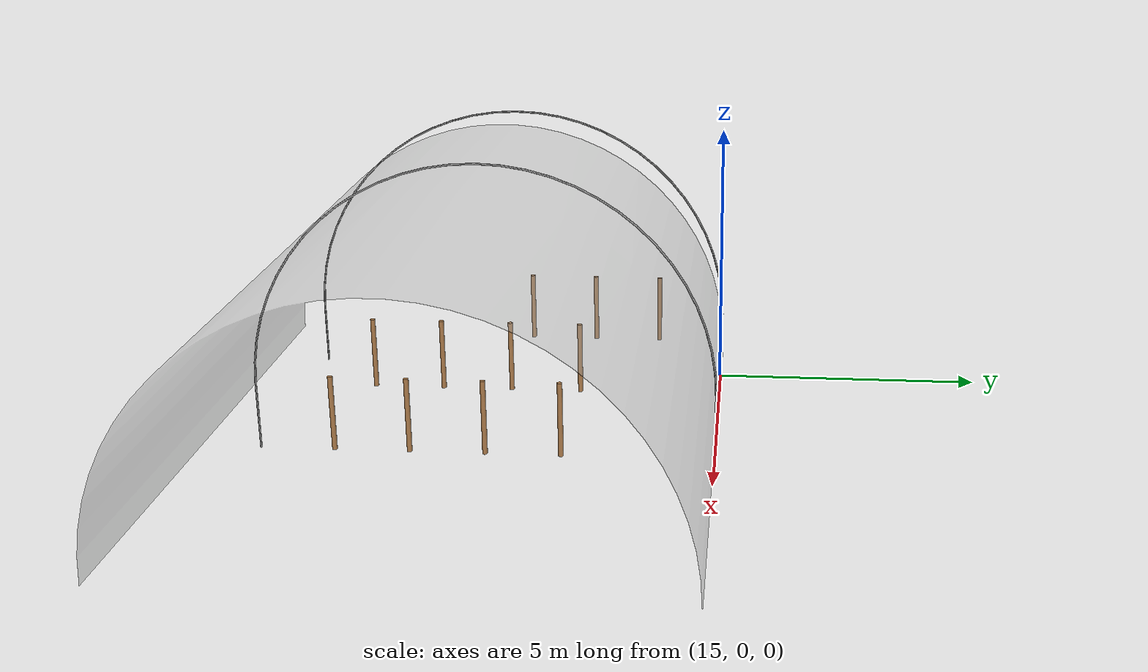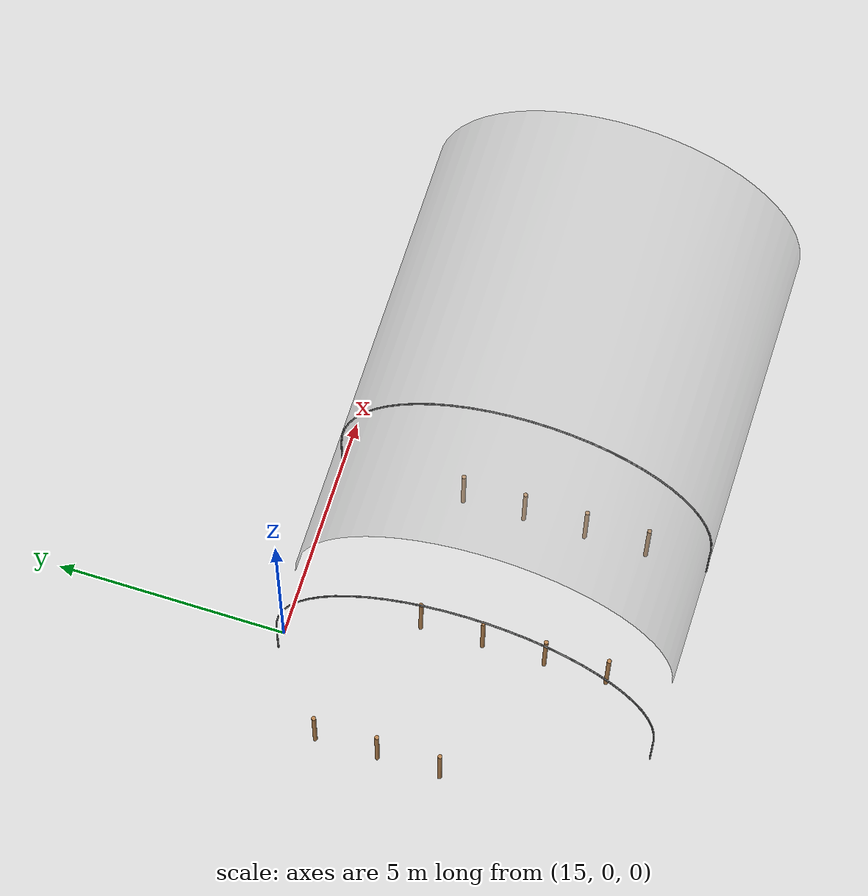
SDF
<sdf version="1.4">
 <world name="default">
  <model name="pole_12">
   <static>1</static>
   <pose>13.000 -4.050 0.691 0.0 0.0 0.0</pose>
   <link name="link">
    <collision name="collision">
     <geometry><cylinder><length>1.38235</length><radius>0.0456111</radius></cylinder></geometry>
    </collision>
    <visual name="visual">
     <geometry><cylinder><length>1.38235</length><radius>0.0456111</radius></cylinder></geometry>
     <material>
      <script><uri>file://media/materials/scripts/gazebo.material</uri><name>Gazebo/WoodFloor</name></script>
      <shader type="vertex"><normal_map>__default__</normal_map></shader>
      <emissive>0 0 0 1</emissive>
      <specular>0.01 0.01 0.01 1</specular>
      <ambient>0.9 0.9 0.9 1</ambient>
      <diffuse>0.09 0.09 0.09 1</diffuse>
     </material>
    </visual>
   </link>
  </model>
  <model name="pole_13">
   <static>1</static>
   <pose>13.000 -2.700 0.691 0.0 0.0 0.0</pose>
   <link name="link">
    <collision name="collision">
     <geometry><cylinder><length>1.38235</length><radius>0.0456111</radius></cylinder></geometry>
    </collision>
    <visual name="visual">
     <geometry><cylinder><length>1.38235</length><radius>0.0456111</radius></cylinder></geometry>
     <material>
      <script><uri>file://media/materials/scripts/gazebo.material</uri><name>Gazebo/WoodFloor</name></script>
      <shader type="vertex"><normal_map>__default__</normal_map></shader>
      <emissive>0 0 0 1</emissive>
      <specular>0.01 0.01 0.01 1</specular>
      <ambient>0.9 0.9 0.9 1</ambient>
      <diffuse>0.09 0.09 0.09 1</diffuse>
     </material>
    </visual>
   </link>
  </model>
  <model name="pole_14">
   <static>1</static>
   <pose>13.000 -1.350 0.691 0.0 0.0 0.0</pose>
   <link name="link">
    <collision name="collision">
     <geometry><cylinder><length>1.38235</length><radius>0.0456111</radius></cylinder></geometry>
    </collision>
    <visual name="visual">
     <geometry><cylinder><length>1.38235</length><radius>0.0456111</radius></cylinder></geometry>
     <material>
      <script><uri>file://media/materials/scripts/gazebo.material</uri><name>Gazebo/WoodFloor</name></script>
      <shader type="vertex"><normal_map>__default__</normal_map></shader>
      <emissive>0 0 0 1</emissive>
      <specular>0.01 0.01 0.01 1</specular>
      <ambient>0.9 0.9 0.9 1</ambient>
      <diffuse>0.09 0.09 0.09 1</diffuse>
     </material>
    </visual>
   </link>
  </model>
  <model name="pole_15">
   <static>1</static>
   <pose>16.000 -6.750 0.691 0.0 0.0 0.0</pose>
   <link name="link">
    <collision name="collision">
     <geometry><cylinder><length>1.38235</length><radius>0.0456111</radius></cylinder></geometry>
    </collision>
    <visual name="visual">
     <geometry><cylinder><length>1.38235</length><radius>0.0456111</radius></cylinder></geometry>
     <material>
      <script><uri>file://media/materials/scripts/gazebo.material</uri><name>Gazebo/WoodFloor</name></script>
      <shader type="vertex"><normal_map>__default__</normal_map></shader>
      <emissive>0 0 0 1</emissive>
      <specular>0.01 0.01 0.01 1</specular>
      <ambient>0.9 0.9 0.9 1</ambient>
      <diffuse>0.09 0.09 0.09 1</diffuse>
     </material>
    </visual>
   </link>
  </model>
  <model name="pole_16">
   <static>1</static>
   <pose>16.000 -5.400 0.691 0.0 0.0 0.0</pose>
   <link name="link">
    <collision name="collision">
     <geometry><cylinder><length>1.38235</length><radius>0.0456111</radius></cylinder></geometry>
    </collision>
    <visual name="visual">
     <geometry><cylinder><length>1.38235</length><radius>0.0456111</radius></cylinder></geometry>
     <material>
      <script><uri>file://media/materials/scripts/gazebo.material</uri><name>Gazebo/WoodFloor</name></script>
      <shader type="vertex"><normal_map>__default__</normal_map></shader>
      <emissive>0 0 0 1</emissive>
      <specular>0.01 0.01 0.01 1</specular>
      <ambient>0.9 0.9 0.9 1</ambient>
      <diffuse>0.09 0.09 0.09 1</diffuse>
     </material>
    </visual>
   </link>
  </model>
  <model name="pole_17">
   <static>1</static>
   <pose>16.000 -4.050 0.691 0.0 0.0 0.0</pose>
   <link name="link">
    <collision name="collision">
     <geometry><cylinder><length>1.38235</length><radius>0.0456111</radius></cylinder></geometry>
    </collision>
    <visual name="visual">
     <geometry><cylinder><length>1.38235</length><radius>0.0456111</radius></cylinder></geometry>
     <material>
      <script><uri>file://media/materials/scripts/gazebo.material</uri><name>Gazebo/WoodFloor</name></script>
      <shader type="vertex"><normal_map>__default__</normal_map></shader>
      <emissive>0 0 0 1</emissive>
      <specular>0.01 0.01 0.01 1</specular>
      <ambient>0.9 0.9 0.9 1</ambient>
      <diffuse>0.09 0.09 0.09 1</diffuse>
     </material>
    </visual>
   </link>
  </model>
  <model name="pole_18">
   <static>1</static>
   <pose>16.000 -2.700 0.691 0.0 0.0 0.0</pose>
   <link name="link">
    <collision name="collision">
     <geometry><cylinder><length>1.38235</length><radius>0.0456111</radius></cylinder></geometry>
    </collision>
    <visual name="visual">
     <geometry><cylinder><length>1.38235</length><radius>0.0456111</radius></cylinder></geometry>
     <material>
      <script><uri>file://media/materials/scripts/gazebo.material</uri><name>Gazebo/WoodFloor</name></script>
      <shader type="vertex"><normal_map>__default__</normal_map></shader>
      <emissive>0 0 0 1</emissive>
      <specular>0.01 0.01 0.01 1</specular>
      <ambient>0.9 0.9 0.9 1</ambient>
      <diffuse>0.09 0.09 0.09 1</diffuse>
     </material>
    </visual>
   </link>
  </model>
  <model name="pole_20">
   <static>1</static>
   <pose>19.000 -6.750 0.691 0.0 0.0 0.0</pose>
   <link name="link">
    <collision name="collision">
     <geometry><cylinder><length>1.38235</length><radius>0.0456111</radius></cylinder></geometry>
    </collision>
    <visual name="visual">
     <geometry><cylinder><length>1.38235</length><radius>0.0456111</radius></cylinder></geometry>
     <material>
      <script><uri>file://media/materials/scripts/gazebo.material</uri><name>Gazebo/WoodFloor</name></script>
      <shader type="vertex"><normal_map>__default__</normal_map></shader>
      <emissive>0 0 0 1</emissive>
      <specular>0.01 0.01 0.01 1</specular>
      <ambient>0.9 0.9 0.9 1</ambient>
      <diffuse>0.09 0.09 0.09 1</diffuse>
     </material>
    </visual>
   </link>
  </model>
  <model name="pole_21">
   <static>1</static>
   <pose>19.000 -5.400 0.691 0.0 0.0 0.0</pose>
   <link name="link">
    <collision name="collision">
     <geometry><cylinder><length>1.38235</length><radius>0.0456111</radius></cylinder></geometry>
    </collision>
    <visual name="visual">
     <geometry><cylinder><length>1.38235</length><radius>0.0456111</radius></cylinder></geometry>
     <material>
      <script><uri>file://media/materials/scripts/gazebo.material</uri><name>Gazebo/WoodFloor</name></script>
      <shader type="vertex"><normal_map>__default__</normal_map></shader>
      <emissive>0 0 0 1</emissive>
      <specular>0.01 0.01 0.01 1</specular>
      <ambient>0.9 0.9 0.9 1</ambient>
      <diffuse>0.09 0.09 0.09 1</diffuse>
     </material>
    </visual>
   </link>
  </model>
  <model name="pole_22">
   <static>1</static>
   <pose>19.000 -4.050 0.691 0.0 0.0 0.0</pose>
   <link name="link">
    <collision name="collision">
     <geometry><cylinder><length>1.38235</length><radius>0.0456111</radius></cylinder></geometry>
    </collision>
    <visual name="visual">
     <geometry><cylinder><length>1.38235</length><radius>0.0456111</radius></cylinder></geometry>
     <material>
      <script><uri>file://media/materials/scripts/gazebo.material</uri><name>Gazebo/WoodFloor</name></script>
      <shader type="vertex"><normal_map>__default__</normal_map></shader>
      <emissive>0 0 0 1</emissive>
      <specular>0.01 0.01 0.01 1</specular>
      <ambient>0.9 0.9 0.9 1</ambient>
      <diffuse>0.09 0.09 0.09 1</diffuse>
     </material>
    </visual>
   </link>
  </model>
  <model name="pole_23">
   <static>1</static>
   <pose>19.000 -2.700 0.691 0.0 0.0 0.0</pose>
   <link name="link">
    <collision name="collision">
     <geometry><cylinder><length>1.38235</length><radius>0.0456111</radius></cylinder></geometry>
    </collision>
    <visual name="visual">
     <geometry><cylinder><length>1.38235</length><radius>0.0456111</radius></cylinder></geometry>
     <material>
      <script><uri>file://media/materials/scripts/gazebo.material</uri><name>Gazebo/WoodFloor</name></script>
      <shader type="vertex"><normal_map>__default__</normal_map></shader>
      <emissive>0 0 0 1</emissive>
      <specular>0.01 0.01 0.01 1</specular>
      <ambient>0.9 0.9 0.9 1</ambient>
      <diffuse>0.09 0.09 0.09 1</diffuse>
     </material>
    </visual>
   </link>
  </model>
  <model name="dummy_arch_2">
   <static>1</static>
   <pose>14.666 -8.100 0.0 1.5707 0.0 1.5707</pose>
   <link name="link">
    <collision name="collision">
     <geometry><mesh><uri>model://dummy_arch/dummy_arch.stl</uri></mesh></geometry>
    </collision>
    <visual name="visual">
     <geometry><mesh><uri>model://dummy_arch/dummy_arch.stl</uri></mesh></geometry>
     <material>
      <script><uri>file://media/materials/scripts/gazebo.material</uri><name>Gazebo/Grey</name></script>
     </material>
    </visual>
   </link>
  </model>
  <model name="dummy_arch_3">
   <static>1</static>
   <pose>18.999 -8.100 0.0 1.5707 0.0 1.5707</pose>
   <link name="link">
    <collision name="collision">
     <geometry><mesh><uri>model://dummy_arch/dummy_arch.stl</uri></mesh></geometry>
    </collision>
    <visual name="visual">
     <geometry><mesh><uri>model://dummy_arch/dummy_arch.stl</uri></mesh></geometry>
     <material>
      <script><uri>file://media/materials/scripts/gazebo.material</uri><name>Gazebo/Grey</name></script>
     </material>
    </visual>
   </link>
  </model>
  <model name="canopy10m_1">
   <static>1</static>
   <pose>16.000 -4.033 0.0 1.5707 0.0 1.5707</pose>
   <link name="link">
    <collision name="collision">
     <geometry><mesh><uri>model://canopy10m/Canopy10m.stl</uri></mesh></geometry>
    </collision>
    <visual name="visual">
     <geometry><mesh><uri>model://canopy10m/Canopy10m.stl</uri></mesh></geometry>
     <transparency>0.65</transparency>
    </visual>
   </link>
  </model>
  <include><uri>model://sun</uri></include>
 </world>
</sdf>
